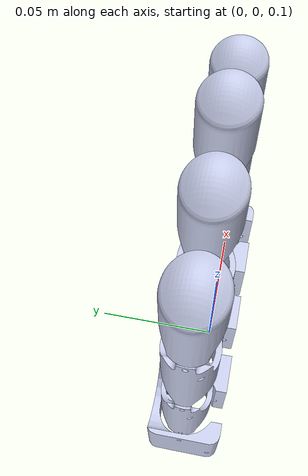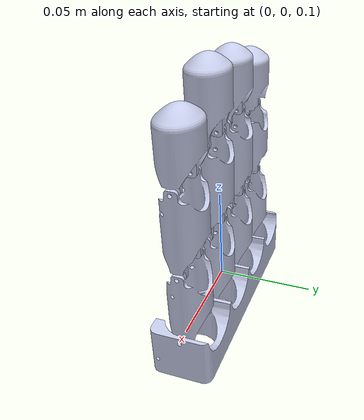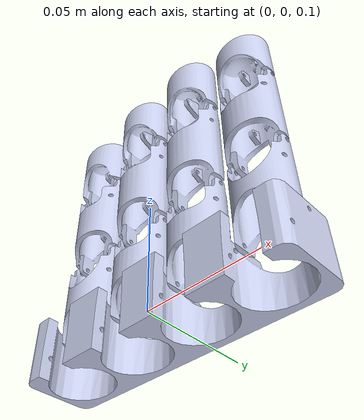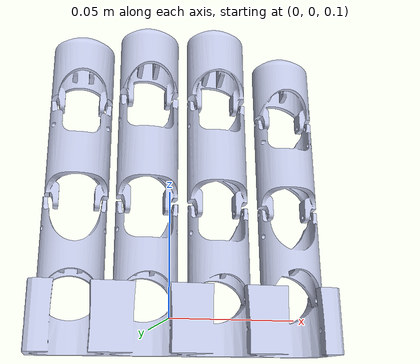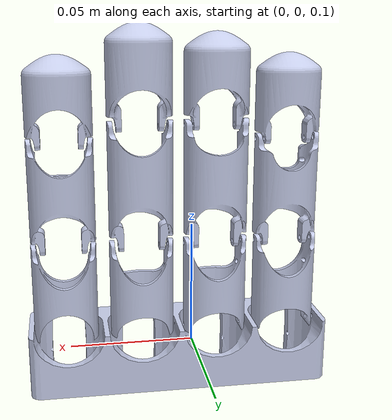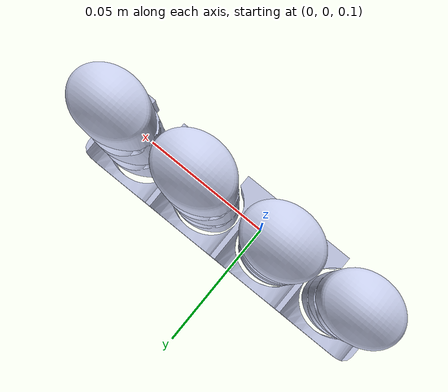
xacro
<?xml version="1.0"?>
<robot xmlns:xacro="http://ros.org/wiki/xacro"
  name="robot_hand">
  <!-- ur5 -->
  <xacro:include filename="$(find robot_hand_description)/urdf/robot_hand_macro.xacro" />

  <link name="world" />

  <!-- arm -->
  <xacro:robot_hand
    prefix=""
    parent="world"
    hw_interface="hardware_interface/PositionJointInterface"
  >
    <origin xyz="0.0 0.0 0.1" rpy="0.0 0.0 0.0" />
  </xacro:robot_hand>

  <gazebo>
    <plugin name="ros_control" filename="libgazebo_ros_control.so"/>
  </gazebo>

</robot>

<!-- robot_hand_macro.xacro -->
<robot xmlns:xacro="http://ros.org/wiki/xacro">

  <xacro:include filename="$(find robot_hand_description)/urdf/robot_hand_transmissions.xacro" />
  <xacro:include filename="$(find robot_hand_description)/urdf/robot_hand_gazebo.xacro" />

  <xacro:macro name="robot_hand"
    params="
    prefix
    parent
    hw_interface
    *origin"
  >

    <xacro:robot_hand_transmission prefix="${prefix}" hw_interface="${hw_interface}" />
    <xacro:robot_hand_gazebo prefix="${prefix}" />

    <!-- connect to parent link -->
    <joint name="${prefix}robot_hand_base_joint" type="fixed">
      <parent link="${parent}" />
      <child link="${prefix}robot_hand_base_link" />
      <xacro:insert_block name="origin" />
    </joint>

    <link name="${prefix}robot_hand_base_link">
      <inertial>
        <origin xyz="0.00679916179935621 -0.0019256752110938 -0.00365584812497563"
          rpy="0 0 0" />
        <mass value="0.027526868485705" />
        <inertia ixx="4.44813578122786E-06" ixy="-3.90118485536691E-09"
          ixz="-2.6766706211295E-09" iyy="3.87930983079954E-05"
          iyz="-4.72320845861549E-07" izz="3.69454967150113E-05" />
      </inertial>
      <visual>
        <origin xyz="0 0 0" rpy="0 0 0" />
        <geometry>
          <mesh filename="package://robot_hand_description/meshes/base_link.STL" />
        </geometry>
        <material name="">
          <color rgba="0.796078431372549 0.823529411764706 0.937254901960784 1" />
        </material>
      </visual>
      <collision>
        <origin xyz="0 0 0" rpy="0 0 0" />
        <geometry>
          <mesh filename="package://robot_hand_description/meshes/base_link.STL" />
        </geometry>
      </collision>
    </link>
    <link name="${prefix}Index_MCP">
      <inertial>
        <origin xyz="0.012682593304865 0.0162068829441154 -0.000625116427471942" rpy="0 0 0" />
        <mass value="0.00283104222178192" />
        <inertia ixx="2.68396990747804E-07" ixy="-1.74857407762405E-11"
          ixz="1.75612867570891E-10" iyy="3.21070306482887E-07" iyz="5.88647002871964E-09"
          izz="4.25530722400776E-07" />
      </inertial>
      <visual>
        <origin xyz="0 0 0" rpy="0 0 0" />
        <geometry>
          <mesh filename="package://robot_hand_description/meshes/Index_MCP.STL" />
        </geometry>
        <material name="">
          <color rgba="0.792156862745098 0.819607843137255 0.933333333333333 1" />
        </material>
      </visual>
      <collision>
        <origin xyz="0 0 0" rpy="0 0 0" />
        <geometry>
          <mesh filename="package://robot_hand_description/meshes/Index_MCP.STL" />
        </geometry>
      </collision>
    </link>
    <joint name="${prefix}I_MCP" type="revolute">
      <origin xyz="0.038816 0.0044374 0.008946" rpy="1.5701 0 0" />
      <parent link="${prefix}robot_hand_base_link" />
      <child link="${prefix}Index_MCP" />
      <axis xyz="1 0 0" />
      <limit lower="-1.4771" upper="0.18082" effort="10" velocity="1" />
    </joint>
    <link name="${prefix}Index_PIP">
      <inertial>
        <origin xyz="0.0126310365219343 0.0201709957614433 -9.54113611201825E-05"
          rpy="0 0 0" />
        <mass value="0.00349224522527916" />
        <inertia ixx="4.28270951698702E-07" ixy="1.73003912727725E-11"
          ixz="-4.91453833301983E-11" iyy="3.82638725849662E-07"
          iyz="2.80038778736064E-08" izz="5.95574976043894E-07" />
      </inertial>
      <visual>
        <origin xyz="0 0 0" rpy="0 0 0" />
        <geometry>
          <mesh filename="package://robot_hand_description/meshes/Index_PIP.STL" />
        </geometry>
        <material name="">
          <color rgba="0.792156862745098 0.819607843137255 0.933333333333333 1" />
        </material>
      </visual>
      <collision>
        <origin xyz="0 0 0" rpy="0 0 0" />
        <geometry>
          <mesh filename="package://robot_hand_description/meshes/Index_PIP.STL" />
        </geometry>
      </collision>
    </link>
    <joint name="${prefix}I_PIP" type="revolute">
      <origin xyz="0 0.035 0" rpy="-0.00012255 0 0" />
      <parent link="${prefix}Index_MCP" />
      <child link="${prefix}Index_PIP" />
      <axis xyz="1 0 0" />
      <limit lower="-1.5376" upper="0.15464" effort="10" velocity="1" />
    </joint>
    <link name="${prefix}Index_DIP">
      <inertial>
        <origin xyz="0.0126443172988165 -0.0192320712158117 0.000175621359642236"
          rpy="0 0 0" />
        <mass value="0.00362445623964682" />
        <inertia ixx="3.58966159502274E-07" ixy="4.14596593976165E-11"
          ixz="2.33824961588716E-11" iyy="3.35705493851876E-07" iyz="6.24081740884986E-10"
          izz="4.779340977474E-07" />
      </inertial>
      <visual>
        <origin xyz="0 0 0" rpy="0 0 0" />
        <geometry>
          <mesh filename="package://robot_hand_description/meshes/Index_DIP.STL" />
        </geometry>
        <material name="">
          <color rgba="0.792156862745098 0.819607843137255 0.933333333333333 1" />
        </material>
      </visual>
      <collision>
        <origin xyz="0 0 0" rpy="0 0 0" />
        <geometry>
          <mesh filename="package://robot_hand_description/meshes/Index_DIP.STL" />
        </geometry>
      </collision>
    </link>
    <joint name="${prefix}I_DIP" type="revolute">
      <origin xyz="0 0.041185 0" rpy="3.1389 0 0" />
      <parent link="${prefix}Index_PIP" />
      <child link="${prefix}Index_DIP" />
      <axis xyz="1 0 0" />
      <limit lower="-1.4558" upper="0.17453" effort="10" velocity="1" />
    </joint>
    <link name="${prefix}Middle_MCP">
      <inertial>
        <origin xyz="0.0126879087309877 0.0154979280536171 -0.000460763708118244"
          rpy="0 0 0" />
        <mass value="0.00303715863779007" />
        <inertia ixx="3.00421693606092E-07" ixy="1.28997577863778E-11"
          ixz="6.95566815197937E-11" iyy="3.42251597986814E-07" iyz="5.91359935850575E-09"
          izz="4.46095724267292E-07" />
      </inertial>
      <visual>
        <origin xyz="0 0 0" rpy="0 0 0" />
        <geometry>
          <mesh filename="package://robot_hand_description/meshes/Middle_MCP.STL" />
        </geometry>
        <material name="">
          <color rgba="0.792156862745098 0.819607843137255 0.933333333333333 1" />
        </material>
      </visual>
      <collision>
        <origin xyz="0 0 0" rpy="0 0 0" />
        <geometry>
          <mesh filename="package://robot_hand_description/meshes/Middle_MCP.STL" />
        </geometry>
      </collision>
    </link>
    <joint name="${prefix}M_MCP" type="revolute">
      <origin xyz="0.008435 0.0044374 0.008946" rpy="1.5726 0 0" />
      <parent link="${prefix}robot_hand_base_link" />
      <child link="${prefix}Middle_MCP" />
      <axis xyz="1 0 0" />
      <limit lower="-1.4717" upper="0.24435" effort="10" velocity="1" />
    </joint>
    <link name="${prefix}Middle_PIP">
      <inertial>
        <origin xyz="0.0126177717251578 0.0236370269473342 -0.000123638278977505"
          rpy="0 0 0" />
        <mass value="0.00421401220768261" />
        <inertia ixx="6.44849155259494E-07" ixy="1.09662271183159E-11"
          ixz="-4.38489725486866E-11" iyy="4.58477964785857E-07"
          iyz="3.75475104147763E-08" izz="8.2581260157064E-07" />
      </inertial>
      <visual>
        <origin xyz="0 0 0" rpy="0 0 0" />
        <geometry>
          <mesh filename="package://robot_hand_description/meshes/Middle_PIP.STL" />
        </geometry>
        <material name="">
          <color rgba="0.792156862745098 0.819607843137255 0.933333333333333 1" />
        </material>
      </visual>
      <collision>
        <origin xyz="0 0 0" rpy="0 0 0" />
        <geometry>
          <mesh filename="package://robot_hand_description/meshes/Middle_PIP.STL" />
        </geometry>
      </collision>
    </link>
    <joint name="${prefix}M_PIP" type="revolute">
      <origin xyz="0 0.035 0" rpy="-0.0072617 0 0" />
      <parent link="${prefix}Middle_MCP" />
      <child link="${prefix}Middle_PIP" />
      <axis xyz="1 0 0" />
      <limit lower="-1.6343" upper="0.14992" effort="10" velocity="1" />
    </joint>
    <link name="${prefix}Middle_DIP">
      <inertial>
        <origin xyz="0.0127223421207237 -0.0221676473088204 0.000221550832163056"
          rpy="0 0 0" />
        <mass value="0.00436102638650894" />
        <inertia ixx="5.38273182816303E-07" ixy="1.91216857813148E-11"
          ixz="-5.93784312446328E-13" iyy="4.04550672036207E-07"
          iyz="-1.81608330783571E-09" izz="6.70718090874217E-07" />
      </inertial>
      <visual>
        <origin xyz="0 0 0" rpy="0 0 0" />
        <geometry>
          <mesh filename="package://robot_hand_description/meshes/Middle_DIP.STL" />
        </geometry>
        <material name="">
          <color rgba="0.792156862745098 0.819607843137255 0.933333333333333 1" />
        </material>
      </visual>
      <collision>
        <origin xyz="0 0 0" rpy="0 0 0" />
        <geometry>
          <mesh filename="package://robot_hand_description/meshes/Middle_DIP.STL" />
        </geometry>
      </collision>
    </link>
    <joint name="${prefix}M_DIP" type="revolute">
      <origin xyz="0 0.047185 0" rpy="-3.1352 0 0" />
      <parent link="${prefix}Middle_PIP" />
      <child link="${prefix}Middle_DIP" />
      <axis xyz="1 0 0" />
      <limit lower="-1.3116" upper="0.067544" effort="10" velocity="1" />
    </joint>
    <link name="${prefix}Ring_MCP">
      <inertial>
        <origin xyz="-0.00851069417048304 0.0154979284345673 -0.000460779135479866"
          rpy="0 0 0" />
        <mass value="0.00303715829296062" />
        <inertia ixx="3.00421605529124E-07" ixy="1.29376837811315E-11"
          ixz="7.00894753767423E-11" iyy="3.42251537696707E-07" iyz="5.91370157650367E-09"
          izz="4.4609572890628E-07" />
      </inertial>
      <visual>
        <origin xyz="0 0 0" rpy="0 0 0" />
        <geometry>
          <mesh filename="package://robot_hand_description/meshes/Ring_MCP.STL" />
        </geometry>
        <material name="">
          <color rgba="0.792156862745098 0.819607843137255 0.933333333333333 1" />
        </material>
      </visual>
      <collision>
        <origin xyz="0 0 0" rpy="0 0 0" />
        <geometry>
          <mesh filename="package://robot_hand_description/meshes/Ring_MCP.STL" />
        </geometry>
      </collision>
    </link>
    <joint name="${prefix}R_MCP" type="revolute">
      <origin xyz="0 0.0044374 0.008946" rpy="1.575 0 0" />
      <parent link="${prefix}robot_hand_base_link" />
      <child link="${prefix}Ring_MCP" />
      <axis xyz="1 0 0" />
      <limit lower="-1.4696" upper="0.23405" effort="10" velocity="1" />
    </joint>
    <link name="${prefix}Ring_PIP">
      <inertial>
        <origin xyz="-0.00855133676474402 0.0232472264469809 -0.000176680583923661"
          rpy="0 0 0" />
        <mass value="0.00409039102539737" />
        <inertia ixx="6.16455094868082E-07" ixy="2.67772798437732E-11"
          ixz="-5.29133703092478E-11" iyy="4.45779709619646E-07"
          iyz="3.86948158031167E-08" izz="7.97277060473416E-07" />
      </inertial>
      <visual>
        <origin xyz="0 0 0" rpy="0 0 0" />
        <geometry>
          <mesh filename="package://robot_hand_description/meshes/Ring_PIP.STL" />
        </geometry>
        <material name="">
          <color rgba="0.792156862745098 0.819607843137255 0.933333333333333 1" />
        </material>
      </visual>
      <collision>
        <origin xyz="0 0 0" rpy="0 0 0" />
        <geometry>
          <mesh filename="package://robot_hand_description/meshes/Ring_PIP.STL" />
        </geometry>
      </collision>
    </link>
    <joint name="${prefix}R_PIP" type="revolute">
      <origin xyz="0 0.035 0" rpy="-0.0021277 0 0" />
      <parent link="${prefix}Ring_MCP" />
      <child link="${prefix}Ring_PIP" />
      <axis xyz="1 0 0" />
      <limit lower="-1.6357" upper="0.14347" effort="10" velocity="1" />
    </joint>
    <link name="${prefix}Ring_DIP">
      <inertial>
        <origin xyz="-0.00852393262700487 -0.0203547421063335 0.000239584005666251"
          rpy="0 0 0" />
        <mass value="0.00395455991158003" />
        <inertia ixx="4.19356255680021E-07" ixy="4.85134953386412E-11"
          ixz="1.59532288599564E-11" iyy="3.62160651949908E-07" iyz="4.24814682139223E-10"
          izz="5.44900483167488E-07" />
      </inertial>
      <visual>
        <origin xyz="0 0 0" rpy="0 0 0" />
        <geometry>
          <mesh filename="package://robot_hand_description/meshes/Ring_DIP.STL" />
        </geometry>
        <material name="">
          <color rgba="0.792156862745098 0.819607843137255 0.933333333333333 1" />
        </material>
      </visual>
      <collision>
        <origin xyz="0 0 0" rpy="0 0 0" />
        <geometry>
          <mesh filename="package://robot_hand_description/meshes/Ring_DIP.STL" />
        </geometry>
      </collision>
    </link>
    <joint name="${prefix}R_DIP" type="revolute">
      <origin xyz="0 0.047185 0" rpy="3.1398 0 0" />
      <parent link="${prefix}Ring_PIP" />
      <child link="${prefix}Ring_DIP" />
      <axis xyz="1 0 0" />
      <limit lower="-1.3556" upper="0.071733" effort="10" velocity="1" />
    </joint>
    <link name="${prefix}Pinky_MCP">
      <inertial>
        <origin xyz="-0.012683586125157 0.0155271782044589 -0.000545257290891017"
          rpy="0 0 0" />
        <mass value="0.00301955312893102" />
        <inertia ixx="2.99518703545727E-07" ixy="5.00022852867899E-11"
          ixz="1.12069400764E-10" iyy="3.41397480166498E-07" iyz="6.05927058795006E-09"
          izz="4.50216530517462E-07" />
      </inertial>
      <visual>
        <origin xyz="0 0 0" rpy="0 0 0" />
        <geometry>
          <mesh filename="package://robot_hand_description/meshes/Pinky_MCP.STL" />
        </geometry>
        <material name="">
          <color rgba="0.792156862745098 0.819607843137255 0.933333333333333 1" />
        </material>
      </visual>
      <collision>
        <origin xyz="0 0 0" rpy="0 0 0" />
        <geometry>
          <mesh filename="package://robot_hand_description/meshes/Pinky_MCP.STL" />
        </geometry>
      </collision>
    </link>
    <joint name="${prefix}P_MCP" type="revolute">
      <origin xyz="-0.02453 0.0044374 0.008946" rpy="1.5759 0 0" />
      <parent link="${prefix}robot_hand_base_link" />
      <child link="${prefix}Pinky_MCP" />
      <axis xyz="1 0 0" />
      <limit lower="-1.464" upper="0.2618" effort="10" velocity="1" />
    </joint>
    <link name="${prefix}Pinky_PIP">
      <inertial>
        <origin xyz="-0.0121871427474864 0.0205416921419714 3.56364307361962E-05"
          rpy="0 0 0" />
        <mass value="0.0035949457541538" />
        <inertia ixx="4.50057809440092E-07" ixy="9.49540070653282E-12"
          ixz="-3.94459518050641E-11" iyy="3.93951645542421E-07"
          iyz="2.31419842280833E-08" izz="6.20691381270147E-07" />
      </inertial>
      <visual>
        <origin xyz="0 0 0" rpy="0 0 0" />
        <geometry>
          <mesh filename="package://robot_hand_description/meshes/Pinky_PIP.STL" />
        </geometry>
        <material name="">
          <color rgba="0.792156862745098 0.819607843137255 0.933333333333333 1" />
        </material>
      </visual>
      <collision>
        <origin xyz="0 0 0" rpy="0 0 0" />
        <geometry>
          <mesh filename="package://robot_hand_description/meshes/Pinky_PIP.STL" />
        </geometry>
      </collision>
    </link>
    <joint name="${prefix}P_PIP" type="revolute">
      <origin xyz="0 0.035 0" rpy="-0.0018272 0 0" />
      <parent link="${prefix}Pinky_MCP" />
      <child link="${prefix}Pinky_PIP" />
      <axis xyz="1 0 0" />
      <limit lower="-1.5329" upper="0.13107" effort="10" velocity="1" />
    </joint>
    <link name="${prefix}Pinky_DIP">
      <inertial>
        <origin xyz="-0.0121135317770977 -0.0191486461097885 0.000174607199637055"
          rpy="0 0 0" />
        <mass value="0.00364561411043183" />
        <inertia ixx="3.6398179673314E-07" ixy="4.45358869574254E-11"
          ixz="2.17009374581359E-11" iyy="3.38510629479639E-07" iyz="6.79893340816322E-10"
          izz="4.84559404112233E-07" />
      </inertial>
      <visual>
        <origin xyz="0 0 0" rpy="0 0 0" />
        <geometry>
          <mesh filename="package://robot_hand_description/meshes/Pinky_DIP.STL" />
        </geometry>
        <material name="">
          <color rgba="0.792156862745098 0.819607843137255 0.933333333333333 1" />
        </material>
      </visual>
      <collision>
        <origin xyz="0 0 0" rpy="0 0 0" />
        <geometry>
          <mesh filename="package://robot_hand_description/meshes/Pinky_DIP.STL" />
        </geometry>
      </collision>
    </link>
    <joint name="${prefix}P_DIP" type="revolute">
      <origin xyz="0 0.041185 0" rpy="3.1378 0 0" />
      <parent link="${prefix}Pinky_PIP" />
      <child link="${prefix}Pinky_DIP" />
      <axis xyz="1 0 0" />
      <limit lower="-1.458" upper="0.16947" effort="10" velocity="1" />
    </joint>

  </xacro:macro>
</robot>
